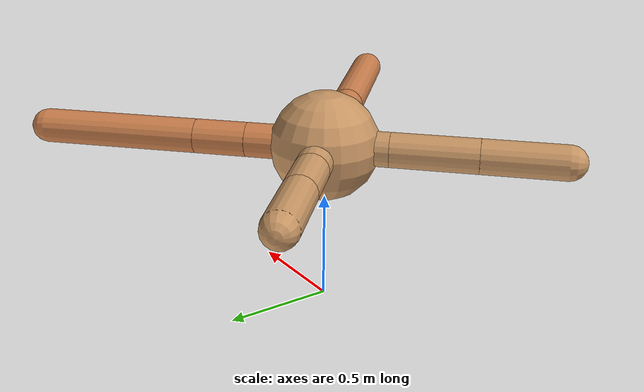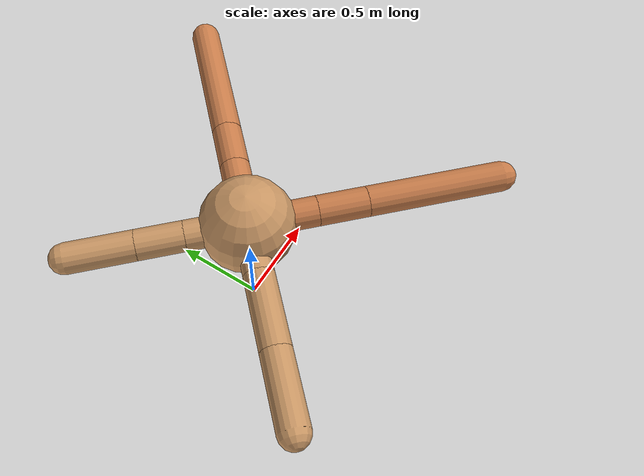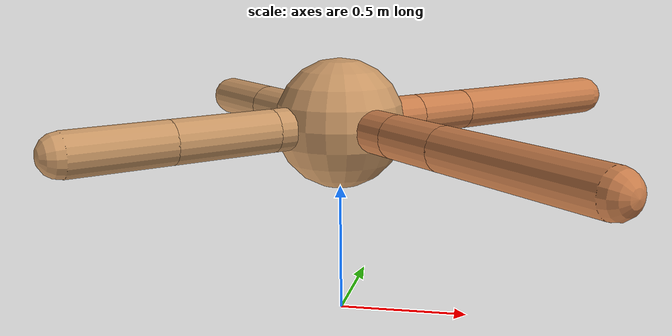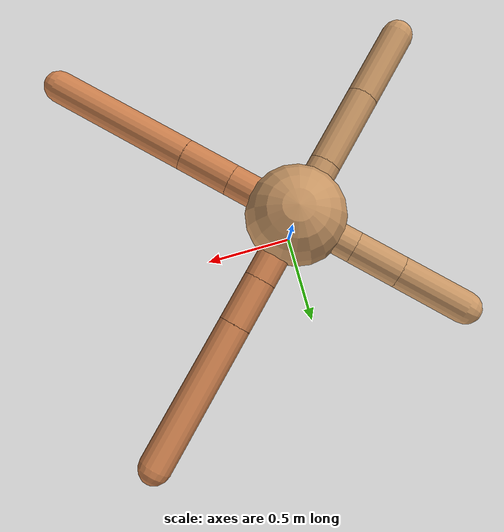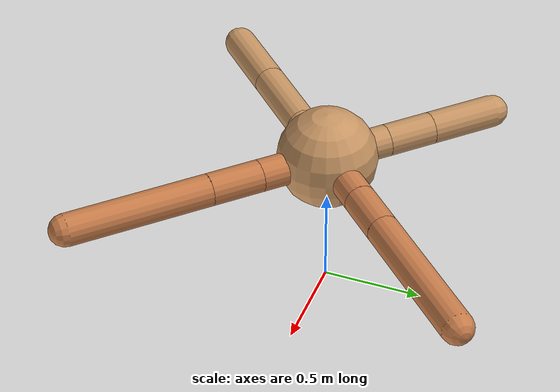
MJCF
<mujoco model="ant">
  <compiler angle="degree" coordinate="local" inertiafromgeom="true" />
  <option integrator="RK4" timestep="0.01" />
  <custom>
    <numeric data="0.0 0.0 0.55 1.0 0.0 0.0 0.0 0.0 1.0 0.0 -1.0 0.0 -1.0 0.0 1.0" name="init_qpos" />
  </custom>
  <default>
    <joint armature="1" damping="1" limited="true" />
    <geom conaffinity="0" condim="3" density="5.0" friction="1.5 0.1 0.1" margin="0.01" rgba="0.8 0.6 0.4 1" />
  </default>
  <worldbody>
    <body name="torso" pos="0 0 0.75">
      <geom name="torso_geom" pos="0 0 0" size="0.25" type="sphere" />

      <body name="front_left_leg" pos="0 0 0">
        <geom fromto="0.0 0.0 0.0 0.25603330851758 0.25603330851758 0.0" name="aux_1_geom" size="0.08" type="capsule" rgba=".8 .5 .3 1" />
        <body name="aux_1" pos="0.25603330851758 0.25603330851758 0.0">
          <joint axis="0 0 1" name="hip_1" pos="0.0 0.0 0.0" range="-40 40" type="hinge" />
          <geom fromto="0.0 0.0 0.0 0.17139375886727215 0.17139375886727215 0.0" name="left_leg_geom" size="0.08" type="capsule" rgba=".8 .5 .3 1" />
          <body pos="0.17139375886727215 0.17139375886727215 0.0" name="front_left_foot">
            <joint axis="-1 1 0" name="ankle_1" pos="0.0 0.0 0.0" range="30 100" type="hinge" />
            <geom fromto="0.0 0.0 0.0 0.5194476004632852 0.5194476004632852 0.0" name="left_ankle_geom" size="0.08" type="capsule" rgba=".8 .5 .3 1" />
          </body>
        </body>
      </body>
      <body name="front_right_leg" pos="0 0 0">
        <geom fromto="0.0 0.0 0.0 -0.22517027412864823 0.22517027412864823 0.0" name="aux_2_geom" size="0.08" type="capsule" />
        <body name="aux_2" pos="-0.22517027412864823 0.22517027412864823 0.0">
          <joint axis="0 0 1" name="hip_2" pos="0.0 0.0 0.0" range="-40 40" type="hinge" />
          <geom fromto="0.0 0.0 0.0 -0.17255569873036095 0.17255569873036095 0.0" name="right_leg_geom" size="0.08" type="capsule" />
          <body pos="-0.17255569873036095 0.17255569873036095 0.0" name="front_right_foot">
            <joint axis="1 1 0" name="ankle_2" pos="0.0 0.0 0.0" range="-100 -30" type="hinge" />
            <geom fromto="0.0 0.0 0.0 -0.2459413259957549 0.2459413259957549 0.0" name="right_ankle_geom" size="0.08" type="capsule" />
          </body>
        </body>
      </body>
      <body name="left_back_leg" pos="0 0 0">
        <geom fromto="0.0 0.0 0.0 -0.2084777917630458 -0.2084777917630458 0.0" name="aux_3_geom" size="0.08" type="capsule" />
        <body name="aux_3" pos="-0.2084777917630458 -0.2084777917630458 0.0">
          <joint axis="0 0 1" name="hip_3" pos="0.0 0.0 0.0" range="-40 40" type="hinge" />
          <geom fromto="0.0 0.0 0.0 -0.2788582575540723 -0.2788582575540723 0.0" name="back_leg_geom" size="0.08" type="capsule" />
          <body pos="-0.2788582575540723 -0.2788582575540723 0.0" name="left_back_foot">
            <joint axis="-1 1 0" name="ankle_3" pos="0.0 0.0 0.0" range="-100 -30" type="hinge" />
            <geom fromto="0.0 0.0 0.0 -0.267792271817768 -0.267792271817768 0.0" name="third_ankle_geom" size="0.08" type="capsule" />
          </body>
        </body>
      </body>
      <body name="right_back_leg" pos="0 0 0">
        <geom fromto="0.0 0.0 0.0 0.25521634623708284 -0.25521634623708284 0.0" name="aux_4_geom" size="0.08" type="capsule" rgba=".8 .5 .3 1" />
        <body name="aux_4" pos="0.25521634623708284 -0.25521634623708284 0.0">
          <joint axis="0 0 1" name="hip_4" pos="0.0 0.0 0.0" range="-40 40" type="hinge" />
          <geom fromto="0.0 0.0 0.0 0.1859390151478904 -0.1859390151478904 0.0" name="rightback_leg_geom" size="0.08" type="capsule" rgba=".8 .5 .3 1" />
          <body pos="0.1859390151478904 -0.1859390151478904 0.0" name="right_back_foot">
            <joint axis="1 1 0" name="ankle_4" pos="0.0 0.0 0.0" range="30 100" type="hinge" />
            <geom fromto="0.0 0.0 0.0 0.5134271185296427 -0.5134271185296427 0.0" name="fourth_ankle_geom" size="0.08" type="capsule" rgba=".8 .5 .3 1" />
          </body>
        </body>
      </body>
    </body>
  </worldbody>
  <actuator>
    <motor ctrllimited="true" ctrlrange="-1.0 1.0" joint="hip_4" gear="150" />
    <motor ctrllimited="true" ctrlrange="-1.0 1.0" joint="ankle_4" gear="150" />
    <motor ctrllimited="true" ctrlrange="-1.0 1.0" joint="hip_1" gear="150" />
    <motor ctrllimited="true" ctrlrange="-1.0 1.0" joint="ankle_1" gear="150" />
    <motor ctrllimited="true" ctrlrange="-1.0 1.0" joint="hip_2" gear="150" />
    <motor ctrllimited="true" ctrlrange="-1.0 1.0" joint="ankle_2" gear="150" />
    <motor ctrllimited="true" ctrlrange="-1.0 1.0" joint="hip_3" gear="150" />
    <motor ctrllimited="true" ctrlrange="-1.0 1.0" joint="ankle_3" gear="150" />
  </actuator>
</mujoco>
